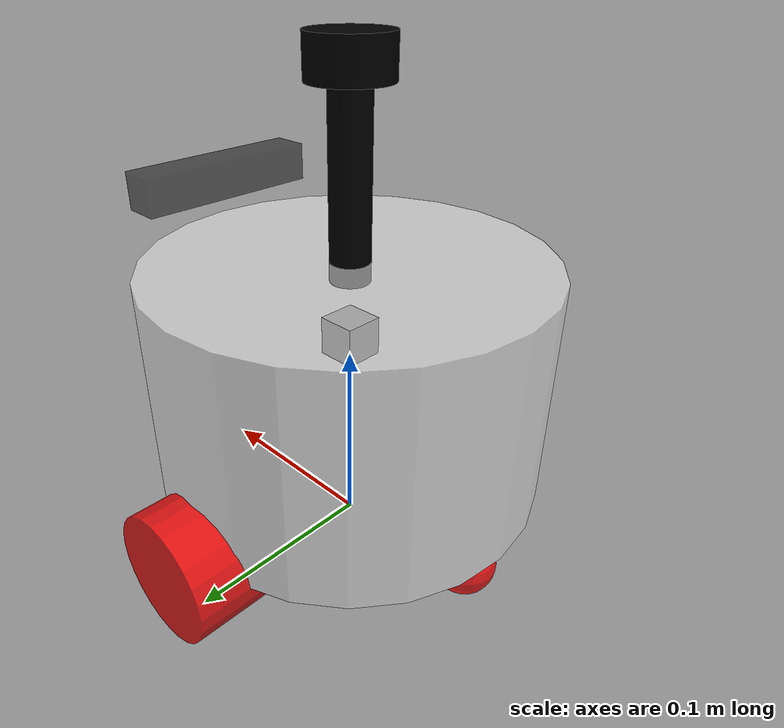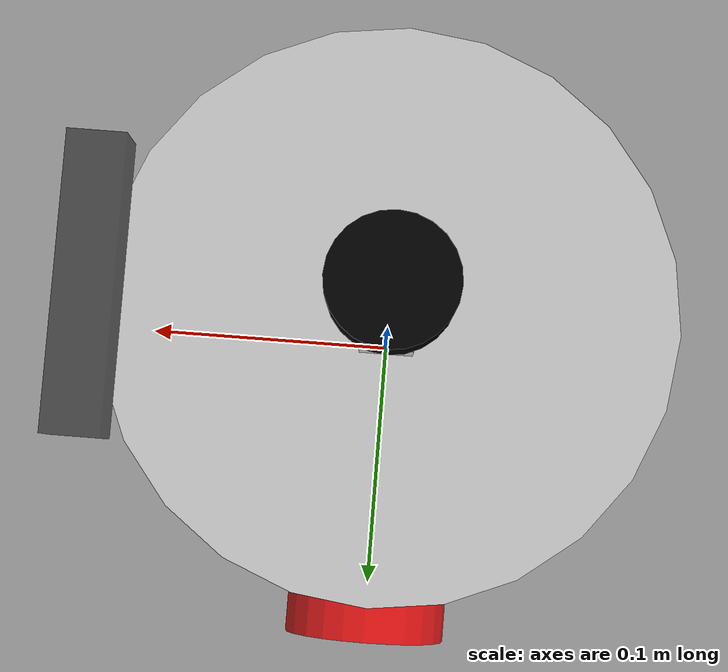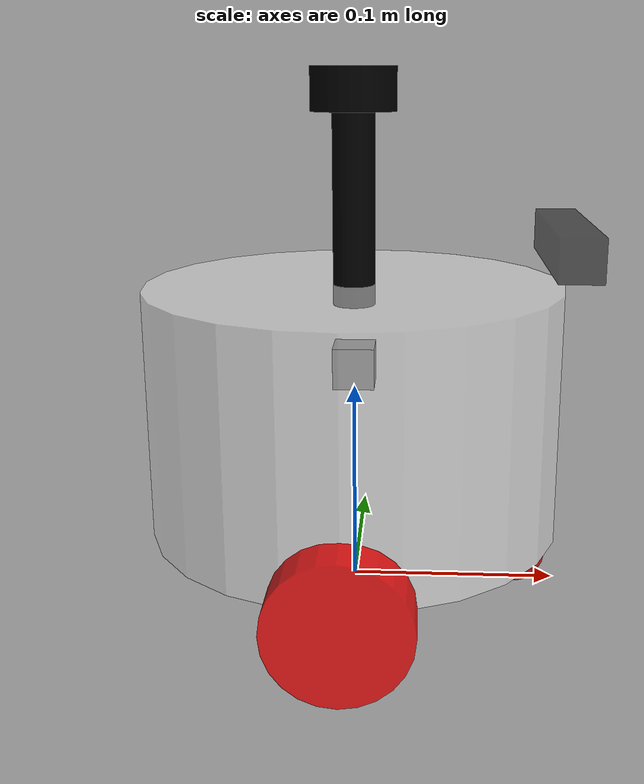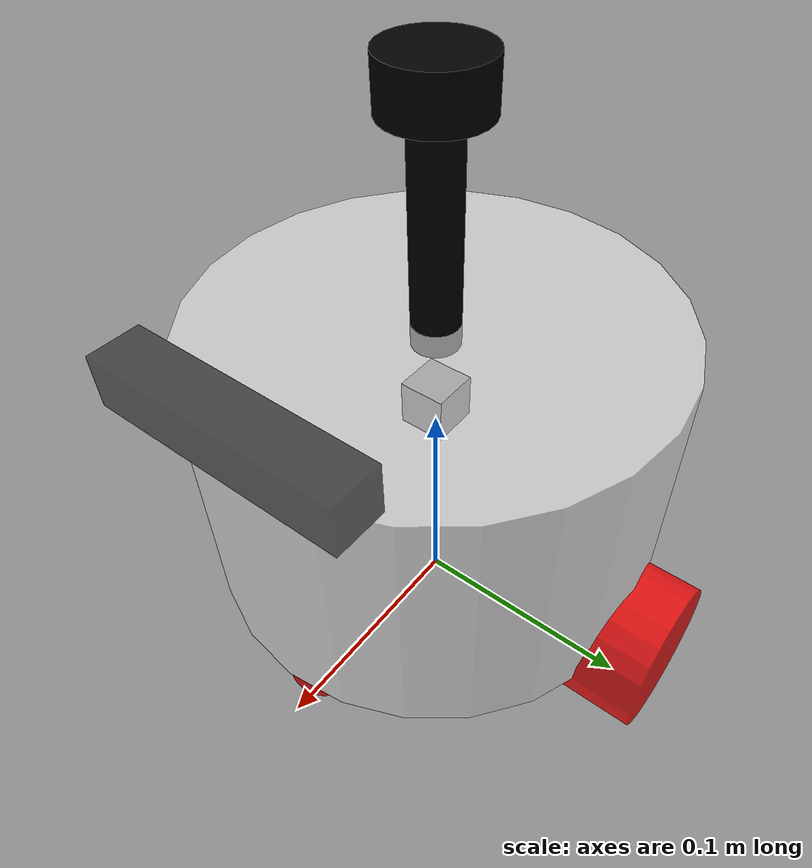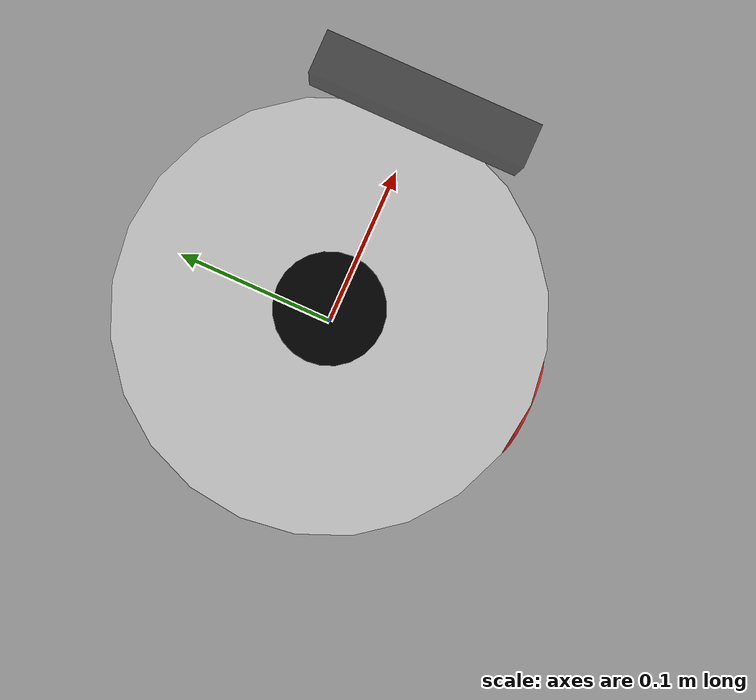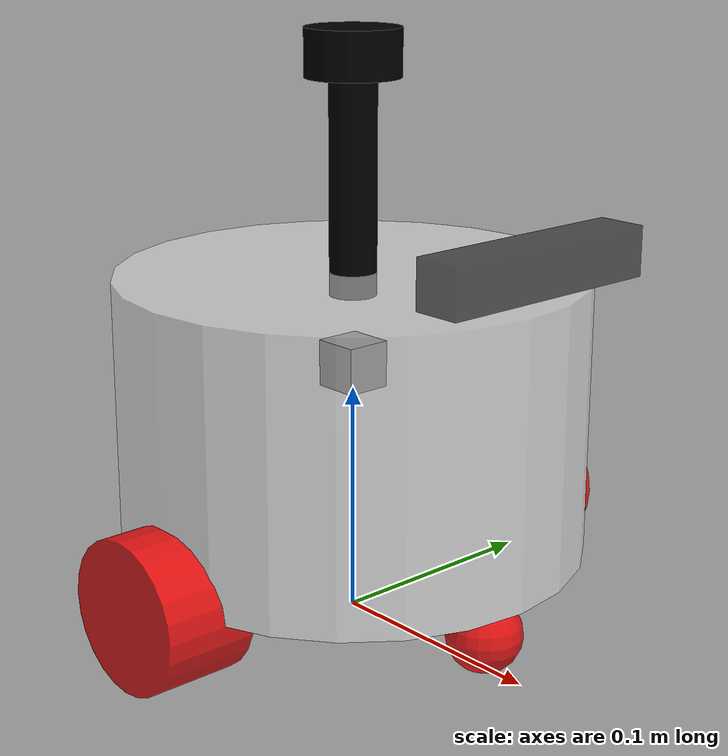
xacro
<?xml version="1.0"?>
<robot xmlns:xacro="http://www.ros.org/wiki/xacro" name="robot_description">

  <xacro:include filename="$(find my_robot_description)/urdf/robot/base.urdf.xacro"/>

  <xacro:include filename="$(find my_robot_description)/urdf/robot/sensor/imu.urdf.xacro"/>
  <xacro:include filename="$(find my_robot_description)/urdf/robot/sensor/laser.urdf.xacro"/>
  <xacro:include filename="$(find my_robot_description)/urdf/robot/sensor/camera.urdf.xacro"/>

  <xacro:include filename="$(find my_robot_description)/urdf/robot/actuator/wheel.urdf.xacro"/>
  <xacro:include filename="$(find my_robot_description)/urdf/robot/actuator/caster.urdf.xacro"/>

  <xacro:include filename="$(find my_robot_description)/urdf/robot/robot_ros2_control.xacro"/>

  <!-- Scheibe -->
  <xacro:base_xacro length="0.12" radius="0.10"/>

  <!-- sensor -->
  <xacro:imu_xacro xyz="0.0 0.0 0.02"/>
  <xacro:camera_xacro xyz="0.10 0.0 0.08"/>
  <xacro:laser_xacro xyz="0.0 0.0 0.10"/>

  <!-- wheel caster -->
  <xacro:wheel_xacro wheel_name="left_wheel"  xyz="0.0  0.10 -0.06"/>
  <xacro:wheel_xacro wheel_name="right_wheel" xyz="0.0 -0.10 -0.06"/>
  <xacro:caster_xacro caster_name="front_caster" xyz="0.08  0.0 -0.076"/>
  <xacro:caster_xacro caster_name="back_caster"  xyz="-0.08 0.0 -0.076"/>

  <!-- control plugin -->
  <xacro:robot_ros2_control/>
</robot>

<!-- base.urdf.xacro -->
<robot xmlns:xacro="http://www.ros.org/wiki/xacro">
    <xacro:include filename="$(find my_robot_description)/urdf/robot/commen_inertia.xacro"/>
    <xacro:macro name="base_xacro" params="length radius">
        <link name="base_footprint">

        </link>
        <!--körper-->
        <link name="base_link">
            <!--Beschreibung-->
            <visual>
                <origin xyz="0.0 0.0 0.0" rpy="0.0 0.0 0.0"/>
                <!--Form-->
                <geometry>
                    <cylinder radius="${radius}" length="${length}"/>
                </geometry>
                <material name = "white">
                    <color rgba="1.0 1.0 1.0 0.5"/>
                </material>
            </visual>
            <collision>
                 <origin xyz="0.0 0.0 0.0" rpy="0.0 0.0 0.0"/>
                <!--Form-->
                <geometry>
                    <cylinder radius="${radius}" length="${length}"/>
                </geometry>
                <material name = "white">
                    <color rgba="1.0 1.0 1.0 0.5"/>
                </material>
            </collision>

            <xacro:cylinder_inertia m="1.0" r="${radius}" h="${length}"/>
        </link>

        <joint name="joint_name" type="fixed">
            <origin xyz="0.0 0.0 ${length/2.0+0.032-0.001}" rpy="0.0 0.0 0.0"/>
            <parent link ="base_footprint"/>
            <child link ="base_link"/>
        </joint>
    </xacro:macro>
</robot>

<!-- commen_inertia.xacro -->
<robot xmlns:xacro="http://ros.org/wiki/xacro">

  <xacro:macro name="box_inertia" params="m w h d">
    <inertial>
      <mass value="${m}" />
      <inertia ixx="${(m/12) * (h*h + d*d)}" ixy="0.0" ixz="0.0"
               iyy="${(m/12) * (w*w + d*d)}" iyz="0.0"
               izz="${(m/12) * (w*w + h*h)}" />
    </inertial>
  </xacro:macro>

  <xacro:macro name="cylinder_inertia" params="m r h">
    <inertial>
      <mass value="${m}" />
      <inertia ixx="${(m/12) * (3*r*r + h*h)}" ixy="0.0" ixz="0.0"
               iyy="${(m/12) * (3*r*r + h*h)}" iyz="0.0"
               izz="${(1/2) * m * r*r}" />
    </inertial>
  </xacro:macro>

  <xacro:macro name="sphere_inertia" params="m r">
    <inertial>
      <mass value="${m}" />
      <inertia ixx="${(2/5) * m * (r*r)}" ixy="0.0" ixz="0.0"
               iyy="${(2/5) * m * (r*r)}" iyz="0.0"
               izz="${(2/5) * m * (r*r)}" />
    </inertial>
  </xacro:macro>

</robot>

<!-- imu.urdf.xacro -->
<robot xmlns:xacro="http://www.ros.org/wiki/xacro">
  <xacro:include filename="$(find my_robot_description)/urdf/robot/commen_inertia.xacro"/>

  <xacro:macro name="imu_xacro" params="xyz">

    <!-- IMU 支撑底座 -->
    <link name="imu_link">
      <visual>
        <origin xyz="0 0 0" rpy="0 0 0"/>
        <geometry>
          <box size="0.02 0.02 0.02"/>
        </geometry>
        <material name="grey">
          <color rgba="0.3 0.3 0.3 1.0"/>
        </material>
      </visual>
      <collision>
        <origin xyz="0 0 0" rpy="0 0 0"/>
        <geometry>
          <box size="0.02 0.02 0.02"/>
        </geometry>
      </collision>
      <xacro:box_inertia m="0.02" w="0.02" h="0.02" d="0.02"/>

      <!-- ✅ Gazebo Harmonic 格式的 IMU 传感器 -->
      <sensor name="imu_sensor" type="imu">
        <topic>imu</topic>
        <pose>0 0 0 0 0 0</pose>
        <always_on>true</always_on>
        <update_rate>100</update_rate>
        <visualize>true</visualize>
      </sensor>
    </link>

    <!-- 固定关节 -->
    <joint name="imu_joint" type="fixed">
      <origin xyz="${xyz}" rpy="0 0 0"/>
      <parent link="base_link"/>
      <child link="imu_link"/>
    </joint>

    <!-- Gazebo 材质 -->
    <gazebo reference="imu_link">
      <material>Gazebo/Grey</material>
    </gazebo>

  </xacro:macro>
</robot>

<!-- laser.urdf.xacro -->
<robot xmlns:xacro="http://www.ros.org/wiki/xacro">
  <xacro:include filename="$(find my_robot_description)/urdf/robot/commen_inertia.xacro"/>

  <xacro:macro name="laser_xacro" params="xyz">

    <!-- 激光雷达支撑杆 -->
    <link name="laser_cylinder_link">
      <visual>
        <origin xyz="0.0 0.0 0.0" rpy="0.0 0.0 0.0"/>
        <geometry>
          <cylinder radius="0.01" length="0.10"/>
        </geometry>
        <material name="black">
          <color rgba="0.0 0.0 0.0 1.0"/>
        </material>
      </visual>
      <collision>
        <origin xyz="0.0 0.0 0.0" rpy="0.0 0.0 0.0"/>
        <geometry>
          <cylinder radius="0.01" length="0.10"/>
        </geometry>
      </collision>
      <xacro:cylinder_inertia m="0.05" r="0.01" h="0.10"/>
    </link>

    <!-- 激光雷达主体 -->
    <link name="laser_link">
      <visual>
        <origin xyz="0.0 0.0 0.0" rpy="0.0 0.0 0.0"/>
        <geometry>
          <cylinder radius="0.02" length="0.02"/>
        </geometry>
        <material name="black">
          <color rgba="0.0 0.0 0.0 1.0"/>
        </material>
      </visual>
      <collision>
        <origin xyz="0.0 0.0 0.0" rpy="0.0 0.0 0.0"/>
        <geometry>
          <cylinder radius="0.02" length="0.02"/>
        </geometry>
      </collision>
      <xacro:cylinder_inertia m="0.10" r="0.02" h="0.02"/>
    </link>

    <!-- joints -->
    <joint name="laser_joint" type="fixed">
      <origin xyz="0.0 0.0 0.05" rpy="0.0 0.0 0.0"/>
      <parent link="laser_cylinder_link"/>
      <child link="laser_link"/>
    </joint>

    <joint name="laser_cylinder_joint" type="fixed">
      <origin xyz="${xyz}" rpy="0.0 0.0 0.0"/>
      <parent link="base_link"/>
      <child link="laser_cylinder_link"/>
    </joint>

    <!-- 材质 -->
    <gazebo reference="laser_cylinder_link">
      <material>Gazebo/Black</material>
    </gazebo>

    <gazebo reference="laser_link">
      <material>Gazebo/Black</material>
    </gazebo>

    <!-- ✅ 修正版 Lidar 传感器绑定 -->
    <gazebo reference="laser_link">
          <sensor name="gpu_lidar" type="gpu_lidar">
                <topic>lidar</topic>
                <update_rate>10</update_rate>
                <lidar>
                    <!-- 设置扫描范围 -->
                    <scan>
                        <!-- 描述水平扫描范围 描述雷达扫描一圈的采样光束数量 分辨率和samples一起决定实际采样点数量
                        起始扫描角度 终止扫描角度 vertical 描述竖直扫描范围，字段同horizontal -->
                        <horizontal>
                            <samples>360</samples>
                            <resolution>1.000000</resolution>
                            <min_angle>0.000000</min_angle>
                            <max_angle>6.283100</max_angle>
                        </horizontal>
                    </scan>
                    <!-- 设置扫描距离 -->
                    <range>
                        <min>0.080000</min>
                        <max>10.0</max>
                        <resolution>0.010000</resolution>
                    </range>
                </lidar>
                <visualize>true</visualize>
            </sensor>
    </gazebo>

  </xacro:macro>
</robot>

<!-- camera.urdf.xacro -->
<robot xmlns:xacro="http://www.ros.org/wiki/xacro">
  <xacro:include filename="$(find my_robot_description)/urdf/robot/commen_inertia.xacro"/>

  <xacro:macro name="camera_xacro" params="xyz">

    <!-- 摄像头外壳 -->
    <link name="camera_link">
      <visual>
        <origin xyz="0.0 0.0 0.0" rpy="0.0 0.0 0.0"/>
        <geometry>
          <box size="0.02 0.10 0.02"/>
        </geometry>
        <material name="black">
          <color rgba="0.0 0.0 0.0 0.5"/>
        </material>
      </visual>
      <collision>
        <origin xyz="0.0 0.0 0.0" rpy="0.0 0.0 0.0"/>
        <geometry>
          <box size="0.02 0.10 0.02"/>
        </geometry>
      </collision>
      <xacro:box_inertia m="0.1" w="0.02" h="0.10" d="0.02"/>

      <!-- ✅ Gazebo Harmonic 兼容摄像头传感器定义 -->
      <sensor name="camera_sensor" type="camera">
        <topic>camera/image</topic>
        <pose>0 0 0.05 0 0 0</pose>
        <always_on>true</always_on>
        <update_rate>30</update_rate>
        <visualize>true</visualize>

        <camera>
          <horizontal_fov>1.047</horizontal_fov>
          <image>
            <width>1280</width>
            <height>720</height>
            <format>R8G8B8</format>
          </image>
          <clip>
            <near>0.05</near>
            <far>50.0</far>
          </clip>
        </camera>
      </sensor>
    </link>

    <!-- 固定关节 -->
    <joint name="camera_joint" type="fixed">
      <origin xyz="${xyz}" rpy="0.0 0.0 0.0"/>
      <parent link="base_link"/>
      <child link="camera_link"/>
    </joint>

    <!-- 材质 -->
    <gazebo reference="camera_link">
      <material>Gazebo/Black</material>
    </gazebo>

  </xacro:macro>
</robot>

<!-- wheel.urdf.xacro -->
<robot xmlns:xacro="http://www.ros.org/wiki/xacro">
<xacro:include filename="$(find my_robot_description)/urdf/robot/commen_inertia.xacro"/>
    <xacro:macro name="wheel_xacro" params="wheel_name xyz">
        <link name="${wheel_name}_link">
            <!--Beschreibung-->
            <visual>
                <origin xyz="0.0 0.0 0.0" rpy="1.57079 0.0 0.0"/>
                <!--Form-->
                <geometry>
                    <cylinder radius="0.032" length="0.04"/>
                </geometry>
                <material name = "red">
                    <color rgba="1.0 0.0 0.0 0.8"/>
                </material>
            </visual>
            <collision>
                <origin xyz="0.0 0.0 0.0" rpy="1.57079 0.0 0.0"/>
                <!--Form-->
                <geometry>
                    <cylinder radius="0.032" length="0.04"/>
                </geometry>
                <material name = "red">
                    <color rgba="1.0 0.0 0.0 0.8"/>
                </material>
            </collision>
            <xacro:cylinder_inertia m="0.05" r="0.032" h="0.04"/>
        </link>

        <joint name="${wheel_name}_joint" type="continuous">
            <origin xyz="${xyz}" rpy="0.0 0.0 0.0"/>
            <parent link="base_link"/>
            <child link="${wheel_name}_link"/>
            <axis xyz="0.0 1.0 0.0"/>
        </joint>

        <gazebo reference="${wheel_name}_link">
            <mu1 value="20.0"/>
            <mu2 value="20.0"/>
            <kp value="1000000000.0"/>
            <kd value="1.0"/>
        </gazebo>
    </xacro:macro>
</robot>

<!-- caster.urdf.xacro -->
<robot xmlns:xacro="http://www.ros.org/wiki/xacro">
<xacro:include filename="$(find my_robot_description)/urdf/robot/commen_inertia.xacro"/>
    <xacro:macro name="caster_xacro" params="caster_name xyz">
        <link name="${caster_name}_link">
            <!--Beschreibung-->
            <visual>
                <origin xyz="0.0 0.0 0.0" rpy="0 0.0 0.0"/>
                <!--Form-->
                <geometry>
                        <sphere radius="0.016"/>
                </geometry>
                <material name = "red">
                    <color rgba="1.0 0.0 0.0 0.8"/>
                </material>
            </visual>
            <collision>
                <origin xyz="0.0 0.0 0.0" rpy="0 0.0 0.0"/>
                <!--Form-->
                <geometry>
                        <sphere radius="0.016"/>
                </geometry>
                <material name = "red">
                    <color rgba="1.0 0.0 0.0 0.8"/>
                </material>
            </collision>
            <xacro:sphere_inertia m="0.05" r="0.016"/>
        </link>

        <joint name="${caster_name}_joint" type="fixed">
            <origin xyz="${xyz}" rpy="0.0 0.0 0.0"/>
            <parent link="base_link"/>
            <child link="${caster_name}_link"/>
        </joint>

         <gazebo reference="${caster_name}_link">
            <mu1 value="0.0"/>
            <mu2 value="0.0"/>
            <kp value="1000000000.0"/>
            <kd value="1.0"/>
        </gazebo>
    </xacro:macro>
</robot>
